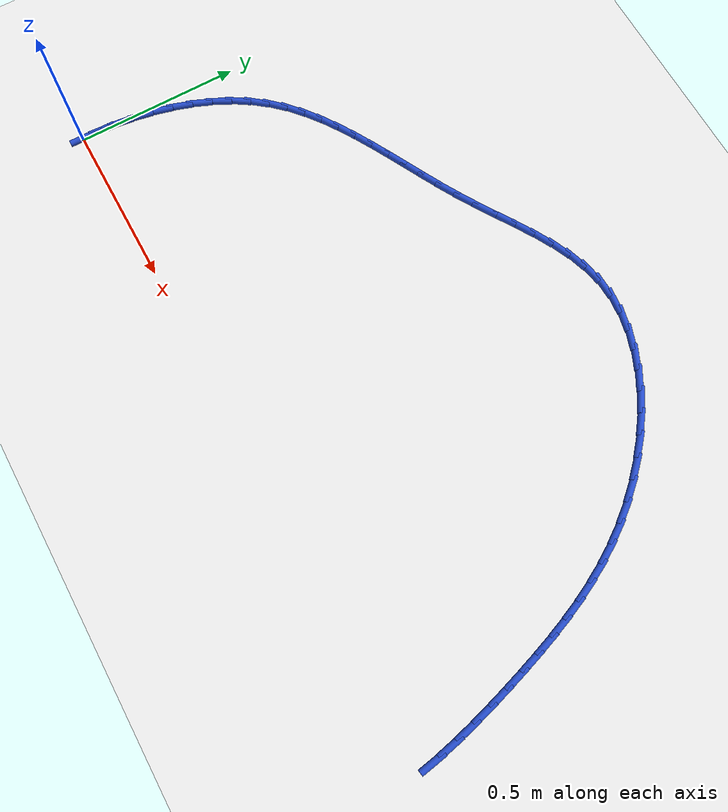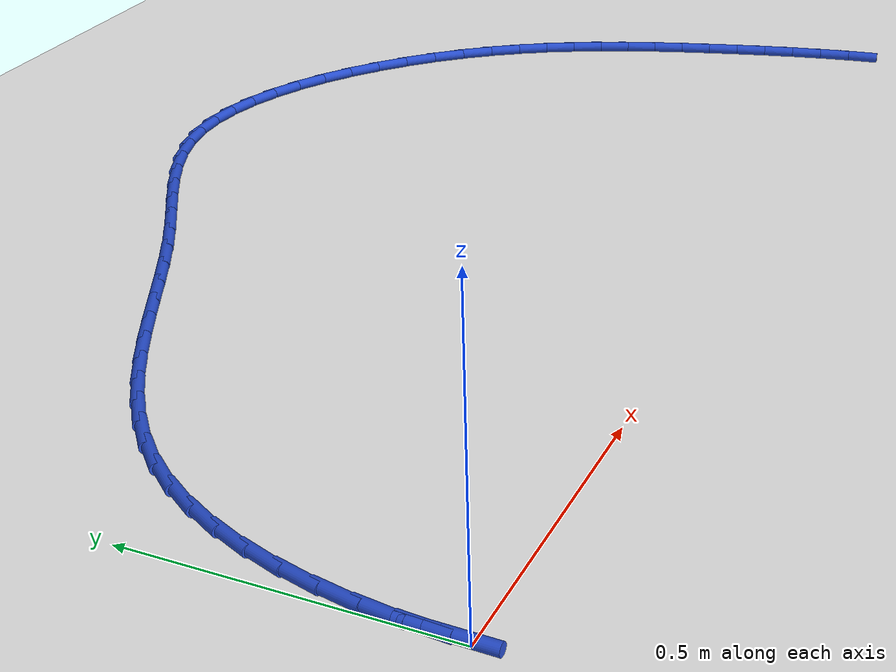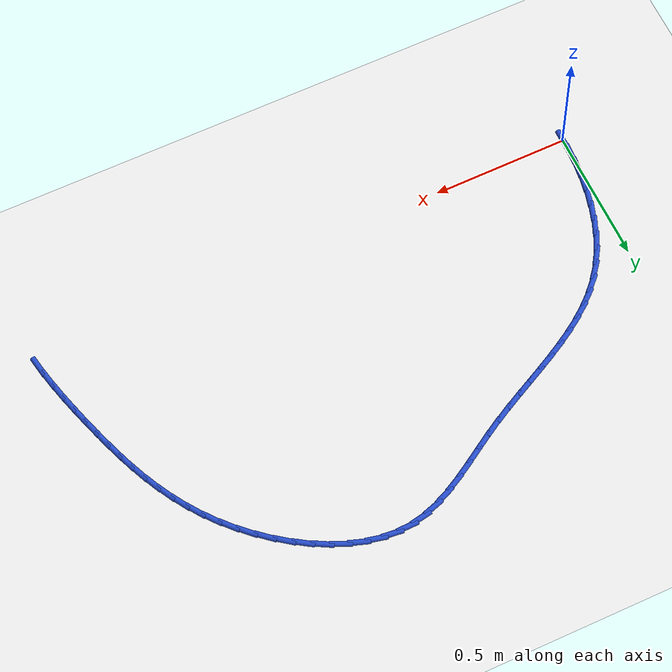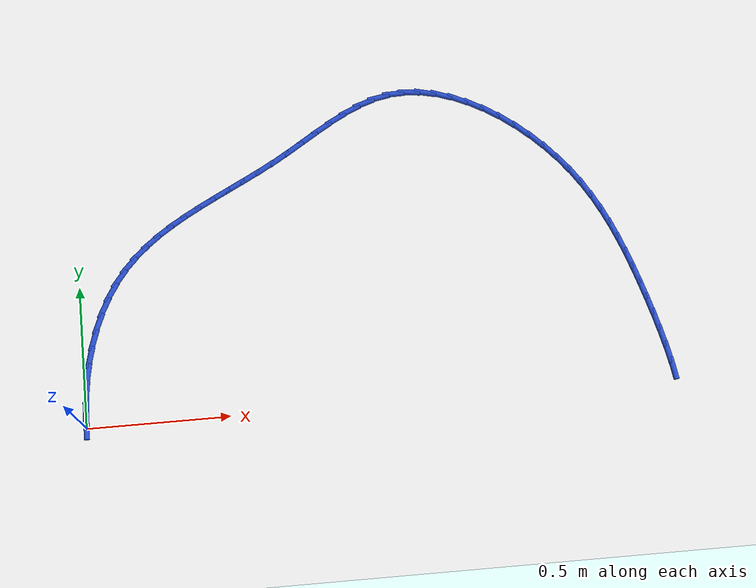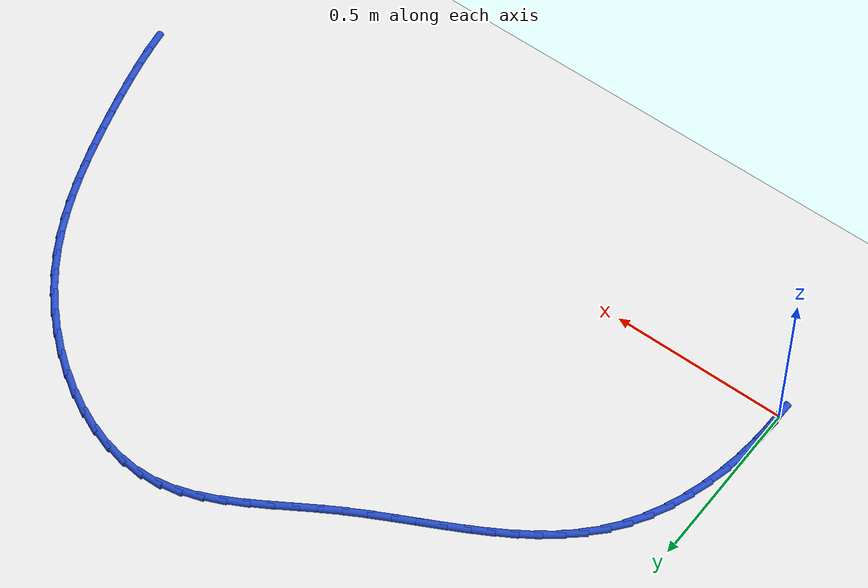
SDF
<sdf version="1.6">
 <world name="default">
  <model name="ground_plane">
   <static>1</static>
   <link name="link">
    <collision name="collision">
     <geometry><plane><normal>0 0 1</normal><size>100 100</size></plane></geometry>
     <surface><friction><ode><mu>100</mu><mu2>50</mu2></ode></friction></surface>
    </collision>
    <visual name="visual">
     <cast_shadows>0</cast_shadows>
     <geometry><plane><normal>0 0 1</normal><size>100 100</size></plane></geometry>
     <material>
      <script><uri>file://media/materials/scripts/gazebo.material</uri><name>Gazebo/WhiteGlow</name></script>
     </material>
    </visual>
   </link>
  </model>
  <model name="line">
   <link name="link_1">
    <pose>0.0010053629912772013 0.06233197883104524 0.01 0 1.57 1.4987251490626161</pose>
    <collision name="collision">
     <geometry><cylinder><radius>0.01</radius><length>0.08</length></cylinder></geometry>
    </collision>
    <visual name="visual">
     <material>
      <script><name>Gazebo/Blue</name><uri>file://media/materials/scripts/gazebo.material</uri></script>
     </material>
     <geometry><cylinder><radius>0.01</radius><length>0.08</length></cylinder></geometry>
    </visual>
   </link>
   <link name="link_2">
    <pose>0.0055066181798482956 0.12467949519743982 0.01 0 1.57 1.4407874502930955</pose>
    <collision name="collision">
     <geometry><cylinder><radius>0.01</radius><length>0.08</length></cylinder></geometry>
    </collision>
    <visual name="visual">
     <material>
      <script><name>Gazebo/Blue</name><uri>file://media/materials/scripts/gazebo.material</uri></script>
     </material>
     <geometry><cylinder><radius>0.01</radius><length>0.08</length></cylinder></geometry>
    </visual>
   </link>
   <link name="link_3">
    <pose>0.013594634945673156 0.18653986069644973 0.01 0 1.57 1.3798611943770096</pose>
    <collision name="collision">
     <geometry><cylinder><radius>0.01</radius><length>0.08</length></cylinder></geometry>
    </collision>
    <visual name="visual">
     <material>
      <script><name>Gazebo/Blue</name><uri>file://media/materials/scripts/gazebo.material</uri></script>
     </material>
     <geometry><cylinder><radius>0.01</radius><length>0.08</length></cylinder></geometry>
    </visual>
   </link>
   <link name="link_4">
    <pose>0.0253602826687117 0.2474103869253412 0.01 0 1.57 1.3149165513758694</pose>
    <collision name="collision">
     <geometry><cylinder><radius>0.01</radius><length>0.08</length></cylinder></geometry>
    </collision>
    <visual name="visual">
     <material>
      <script><name>Gazebo/Blue</name><uri>file://media/materials/scripts/gazebo.material</uri></script>
     </material>
     <geometry><cylinder><radius>0.01</radius><length>0.08</length></cylinder></geometry>
    </visual>
   </link>
   <link name="link_5">
    <pose>0.0408944307289238 0.3067883854813802 0.01 0 1.57 1.2448808017914579</pose>
    <collision name="collision">
     <geometry><cylinder><radius>0.01</radius><length>0.08</length></cylinder></geometry>
    </collision>
    <visual name="visual">
     <material>
      <script><name>Gazebo/Blue</name><uri>file://media/materials/scripts/gazebo.material</uri></script>
     </material>
     <geometry><cylinder><radius>0.01</radius><length>0.08</length></cylinder></geometry>
    </visual>
   </link>
   <link name="link_6">
    <pose>0.060287948506269305 0.3641711679618328 0.01 0 1.57 1.168652807552377</pose>
    <collision name="collision">
     <geometry><cylinder><radius>0.01</radius><length>0.08</length></cylinder></geometry>
    </collision>
    <visual name="visual">
     <material>
      <script><name>Gazebo/Blue</name><uri>file://media/materials/scripts/gazebo.material</uri></script>
     </material>
     <geometry><cylinder><radius>0.01</radius><length>0.08</length></cylinder></geometry>
    </visual>
   </link>
   <link name="link_7">
    <pose>0.08363170538070816 0.4190560459639652 0.01 0 1.57 1.0851517326380444</pose>
    <collision name="collision">
     <geometry><cylinder><radius>0.01</radius><length>0.08</length></cylinder></geometry>
    </collision>
    <visual name="visual">
     <material>
      <script><name>Gazebo/Blue</name><uri>file://media/materials/scripts/gazebo.material</uri></script>
     </material>
     <geometry><cylinder><radius>0.01</radius><length>0.08</length></cylinder></geometry>
    </visual>
   </link>
   <link name="link_8">
    <pose>0.1110165707322002 0.4709403310850433 0.01 0 1.57 0.9934164052687381</pose>
    <collision name="collision">
     <geometry><cylinder><radius>0.01</radius><length>0.08</length></cylinder></geometry>
    </collision>
    <visual name="visual">
     <material>
      <script><name>Gazebo/Blue</name><uri>file://media/materials/scripts/gazebo.material</uri></script>
     </material>
     <geometry><cylinder><radius>0.01</radius><length>0.08</length></cylinder></geometry>
    </visual>
   </link>
   <link name="link_9">
    <pose>0.14253341394070537 0.5193213349223333 0.01 0 1.57 0.8932461151203018</pose>
    <collision name="collision">
     <geometry><cylinder><radius>0.01</radius><length>0.08</length></cylinder></geometry>
    </collision>
    <visual name="visual">
     <material>
      <script><name>Gazebo/Blue</name><uri>file://media/materials/scripts/gazebo.material</uri></script>
     </material>
     <geometry><cylinder><radius>0.01</radius><length>0.08</length></cylinder></geometry>
    </visual>
   </link>
   <link name="link_10">
    <pose>0.17825940564333712 0.5637225412486763 0.01 0 1.57 0.7944623104441382</pose>
    <collision name="collision">
     <geometry><cylinder><radius>0.01</radius><length>0.08</length></cylinder></geometry>
    </collision>
    <visual name="visual">
     <material>
      <script><name>Gazebo/Blue</name><uri>file://media/materials/scripts/gazebo.material</uri></script>
     </material>
     <geometry><cylinder><radius>0.01</radius><length>0.08</length></cylinder></geometry>
    </visual>
   </link>
   <link name="link_11">
    <pose>0.21799876671861415 0.6041889188436166 0.01 0 1.57 0.7077981449531547</pose>
    <collision name="collision">
     <geometry><cylinder><radius>0.01</radius><length>0.08</length></cylinder></geometry>
    </collision>
    <visual name="visual">
     <material>
      <script><name>Gazebo/Blue</name><uri>file://media/materials/scripts/gazebo.material</uri></script>
     </material>
     <geometry><cylinder><radius>0.01</radius><length>0.08</length></cylinder></geometry>
    </visual>
   </link>
   <link name="link_12">
    <pose>0.2613043010729117 0.6412457819615546 0.01 0 1.57 0.6348866503581175</pose>
    <collision name="collision">
     <geometry><cylinder><radius>0.01</radius><length>0.08</length></cylinder></geometry>
    </collision>
    <visual name="visual">
     <material>
      <script><name>Gazebo/Blue</name><uri>file://media/materials/scripts/gazebo.material</uri></script>
     </material>
     <geometry><cylinder><radius>0.01</radius><length>0.08</length></cylinder></geometry>
    </visual>
   </link>
   <link name="link_13">
    <pose>0.30771942954541076 0.6754363717049792 0.01 0 1.57 0.575992088331563</pose>
    <collision name="collision">
     <geometry><cylinder><radius>0.01</radius><length>0.08</length></cylinder></geometry>
    </collision>
    <visual name="visual">
     <material>
      <script><name>Gazebo/Blue</name><uri>file://media/materials/scripts/gazebo.material</uri></script>
     </material>
     <geometry><cylinder><radius>0.01</radius><length>0.08</length></cylinder></geometry>
    </visual>
   </link>
   <link name="link_14">
    <pose>0.35678757297529284 0.70730392917638 0.01 0 1.57 0.5307399416518227</pose>
    <collision name="collision">
     <geometry><cylinder><radius>0.01</radius><length>0.08</length></cylinder></geometry>
    </collision>
    <visual name="visual">
     <material>
      <script><name>Gazebo/Blue</name><uri>file://media/materials/scripts/gazebo.material</uri></script>
     </material>
     <geometry><cylinder><radius>0.01</radius><length>0.08</length></cylinder></geometry>
    </visual>
   </link>
   <link name="link_15">
    <pose>0.4080521522017393 0.7373916954782463 0.01 0 1.57 0.49846960592699047</pose>
    <collision name="collision">
     <geometry><cylinder><radius>0.01</radius><length>0.08</length></cylinder></geometry>
    </collision>
    <visual name="visual">
     <material>
      <script><name>Gazebo/Blue</name><uri>file://media/materials/scripts/gazebo.material</uri></script>
     </material>
     <geometry><cylinder><radius>0.01</radius><length>0.08</length></cylinder></geometry>
    </visual>
   </link>
   <link name="link_16">
    <pose>0.4610565880639315 0.766242911713068 0.01 0 1.57 0.4784790508625739</pose>
    <collision name="collision">
     <geometry><cylinder><radius>0.01</radius><length>0.08</length></cylinder></geometry>
    </collision>
    <visual name="visual">
     <material>
      <script><name>Gazebo/Blue</name><uri>file://media/materials/scripts/gazebo.material</uri></script>
     </material>
     <geometry><cylinder><radius>0.01</radius><length>0.08</length></cylinder></geometry>
    </visual>
   </link>
   <link name="link_17">
    <pose>0.5153443014010507 0.7944008189833338 0.01 0 1.57 0.47016725710114016</pose>
    <collision name="collision">
     <geometry><cylinder><radius>0.01</radius><length>0.08</length></cylinder></geometry>
    </collision>
    <visual name="visual">
     <material>
      <script><name>Gazebo/Blue</name><uri>file://media/materials/scripts/gazebo.material</uri></script>
     </material>
     <geometry><cylinder><radius>0.01</radius><length>0.08</length></cylinder></geometry>
    </visual>
   </link>
   <link name="link_18">
    <pose>0.5704587130522781 0.8224086583915333 0.01 0 1.57 0.47310053680248226</pose>
    <collision name="collision">
     <geometry><cylinder><radius>0.01</radius><length>0.08</length></cylinder></geometry>
    </collision>
    <visual name="visual">
     <material>
      <script><name>Gazebo/Blue</name><uri>file://media/materials/scripts/gazebo.material</uri></script>
     </material>
     <geometry><cylinder><radius>0.01</radius><length>0.08</length></cylinder></geometry>
    </visual>
   </link>
   <link name="link_19">
    <pose>0.6259432438567952 0.8508096710401559 0.01 0 1.57 0.48702663367463433</pose>
    <collision name="collision">
     <geometry><cylinder><radius>0.01</radius><length>0.08</length></cylinder></geometry>
    </collision>
    <visual name="visual">
     <material>
      <script><name>Gazebo/Blue</name><uri>file://media/materials/scripts/gazebo.material</uri></script>
     </material>
     <geometry><cylinder><radius>0.01</radius><length>0.08</length></cylinder></geometry>
    </visual>
   </link>
   <link name="link_20">
    <pose>0.6813413146537833 0.8801470980316911 0.01 0 1.57 0.5118509779170454</pose>
    <collision name="collision">
     <geometry><cylinder><radius>0.01</radius><length>0.08</length></cylinder></geometry>
    </collision>
    <visual name="visual">
     <material>
      <script><name>Gazebo/Blue</name><uri>file://media/materials/scripts/gazebo.material</uri></script>
     </material>
     <geometry><cylinder><radius>0.01</radius><length>0.08</length></cylinder></geometry>
    </visual>
   </link>
   <link name="link_21">
    <pose>0.7361963462824235 0.910964180468628 0.01 0 1.57 0.5432582518347425</pose>
    <collision name="collision">
     <geometry><cylinder><radius>0.01</radius><length>0.08</length></cylinder></geometry>
    </collision>
    <visual name="visual">
     <material>
      <script><name>Gazebo/Blue</name><uri>file://media/materials/scripts/gazebo.material</uri></script>
     </material>
     <geometry><cylinder><radius>0.01</radius><length>0.08</length></cylinder></geometry>
    </visual>
   </link>
   <link name="link_22">
    <pose>0.7901544878487234 0.9435477377021455 0.01 0 1.57 0.5601740028474743</pose>
    <collision name="collision">
     <geometry><cylinder><radius>0.01</radius><length>0.08</length></cylinder></geometry>
    </collision>
    <visual name="visual">
     <material>
      <script><name>Gazebo/Blue</name><uri>file://media/materials/scripts/gazebo.material</uri></script>
     </material>
     <geometry><cylinder><radius>0.01</radius><length>0.08</length></cylinder></geometry>
    </visual>
   </link>
   <link name="link_23">
    <pose>0.843367504032605 0.9769225135616681 0.01 0 1.57 0.5561259656295415</pose>
    <collision name="collision">
     <geometry><cylinder><radius>0.01</radius><length>0.08</length></cylinder></geometry>
    </collision>
    <visual name="visual">
     <material>
      <script><name>Gazebo/Blue</name><uri>file://media/materials/scripts/gazebo.material</uri></script>
     </material>
     <geometry><cylinder><radius>0.01</radius><length>0.08</length></cylinder></geometry>
    </visual>
   </link>
   <link name="link_24">
    <pose>0.8961424543708818 1.0097256177774194 0.01 0 1.57 0.5303312771014151</pose>
    <collision name="collision">
     <geometry><cylinder><radius>0.01</radius><length>0.08</length></cylinder></geometry>
    </collision>
    <visual name="visual">
     <material>
      <script><name>Gazebo/Blue</name><uri>file://media/materials/scripts/gazebo.material</uri></script>
     </material>
     <geometry><cylinder><radius>0.01</radius><length>0.08</length></cylinder></geometry>
    </visual>
   </link>
   <link name="link_25">
    <pose>0.9487864401084989 1.0405940559712539 0.01 0 1.57 0.48107258033093203</pose>
    <collision name="collision">
     <geometry><cylinder><radius>0.01</radius><length>0.08</length></cylinder></geometry>
    </collision>
    <visual name="visual">
     <material>
      <script><name>Gazebo/Blue</name><uri>file://media/materials/scripts/gazebo.material</uri></script>
     </material>
     <geometry><cylinder><radius>0.01</radius><length>0.08</length></cylinder></geometry>
    </visual>
   </link>
   <link name="link_26">
    <pose>1.0016065624904016 1.0681648337650271 0.01 0 1.57 0.40593461998639885</pose>
    <collision name="collision">
     <geometry><cylinder><radius>0.01</radius><length>0.08</length></cylinder></geometry>
    </collision>
    <visual name="visual">
     <material>
      <script><name>Gazebo/Blue</name><uri>file://media/materials/scripts/gazebo.material</uri></script>
     </material>
     <geometry><cylinder><radius>0.01</radius><length>0.08</length></cylinder></geometry>
    </visual>
   </link>
   <link name="link_27">
    <pose>1.0549099227615355 1.0910749567805942 0.01 0 1.57 0.30258493595603275</pose>
    <collision name="collision">
     <geometry><cylinder><radius>0.01</radius><length>0.08</length></cylinder></geometry>
    </collision>
    <visual name="visual">
     <material>
      <script><name>Gazebo/Blue</name><uri>file://media/materials/scripts/gazebo.material</uri></script>
     </material>
     <geometry><cylinder><radius>0.01</radius><length>0.08</length></cylinder></geometry>
    </visual>
   </link>
   <link name="link_28">
    <pose>1.1090036221668451 1.10796143063981 0.01 0 1.57 0.17048263518442544</pose>
    <collision name="collision">
     <geometry><cylinder><radius>0.01</radius><length>0.08</length></cylinder></geometry>
    </collision>
    <visual name="visual">
     <material>
      <script><name>Gazebo/Blue</name><uri>file://media/materials/scripts/gazebo.material</uri></script>
     </material>
     <geometry><cylinder><radius>0.01</radius><length>0.08</length></cylinder></geometry>
    </visual>
   </link>
   <link name="link_29">
    <pose>1.164194182612053 1.1174626909248928 0.01 0 1.57 0.022567894930224493</pose>
    <collision name="collision">
     <geometry><cylinder><radius>0.01</radius><length>0.08</length></cylinder></geometry>
    </collision>
    <visual name="visual">
     <material>
      <script><name>Gazebo/Blue</name><uri>file://media/materials/scripts/gazebo.material</uri></script>
     </material>
     <geometry><cylinder><radius>0.01</radius><length>0.08</length></cylinder></geometry>
    </visual>
   </link>
   <link name="link_30">
    <pose>1.220578179842152 1.11873537512101 0.01 0 1.57 -0.11347858202582886</pose>
    <collision name="collision">
     <geometry><cylinder><radius>0.01</radius><length>0.08</length></cylinder></geometry>
    </collision>
    <visual name="visual">
     <material>
      <script><name>Gazebo/Blue</name><uri>file://media/materials/scripts/gazebo.material</uri></script>
     </material>
     <geometry><cylinder><radius>0.01</radius><length>0.08</length></cylinder></geometry>
    </visual>
   </link>
   <link name="link_31">
    <pose>1.277731332135758 1.1122217328402983 0.01 0 1.57 -0.2335891682261421</pose>
    <collision name="collision">
     <geometry><cylinder><radius>0.01</radius><length>0.08</length></cylinder></geometry>
    </collision>
    <visual name="visual">
     <material>
      <script><name>Gazebo/Blue</name><uri>file://media/materials/scripts/gazebo.material</uri></script>
     </material>
     <geometry><cylinder><radius>0.01</radius><length>0.08</length></cylinder></geometry>
    </visual>
   </link>
   <link name="link_32">
    <pose>1.335149965818095 1.098559973750481 0.01 0 1.57 -0.33914228710817984</pose>
    <collision name="collision">
     <geometry><cylinder><radius>0.01</radius><length>0.08</length></cylinder></geometry>
    </collision>
    <visual name="visual">
     <material>
      <script><name>Gazebo/Blue</name><uri>file://media/materials/scripts/gazebo.material</uri></script>
     </material>
     <geometry><cylinder><radius>0.01</radius><length>0.08</length></cylinder></geometry>
    </visual>
   </link>
   <link name="link_33">
    <pose>1.3923304072143876 1.0783883075192808 0.01 0 1.57 -0.43233167740547573</pose>
    <collision name="collision">
     <geometry><cylinder><radius>0.01</radius><length>0.08</length></cylinder></geometry>
    </collision>
    <visual name="visual">
     <material>
      <script><name>Gazebo/Blue</name><uri>file://media/materials/scripts/gazebo.material</uri></script>
     </material>
     <geometry><cylinder><radius>0.01</radius><length>0.08</length></cylinder></geometry>
    </visual>
   </link>
   <link name="link_34">
    <pose>1.4487689826498598 1.0523449438144208 0.01 0 1.57 -0.5155599499745576</pose>
    <collision name="collision">
     <geometry><cylinder><radius>0.01</radius><length>0.08</length></cylinder></geometry>
    </collision>
    <visual name="visual">
     <material>
      <script><name>Gazebo/Blue</name><uri>file://media/materials/scripts/gazebo.material</uri></script>
     </material>
     <geometry><cylinder><radius>0.01</radius><length>0.08</length></cylinder></geometry>
    </visual>
   </link>
   <link name="link_35">
    <pose>1.503962018449736 1.0210680923036237 0.01 0 1.57 -0.591142706060563</pose>
    <collision name="collision">
     <geometry><cylinder><radius>0.01</radius><length>0.08</length></cylinder></geometry>
    </collision>
    <visual name="visual">
     <material>
      <script><name>Gazebo/Blue</name><uri>file://media/materials/scripts/gazebo.material</uri></script>
     </material>
     <geometry><cylinder><radius>0.01</radius><length>0.08</length></cylinder></geometry>
    </visual>
   </link>
   <link name="link_36">
    <pose>1.5574058409392404 0.9851959626546127 0.01 0 1.57 -0.661213866147255</pose>
    <collision name="collision">
     <geometry><cylinder><radius>0.01</radius><length>0.08</length></cylinder></geometry>
    </collision>
    <visual name="visual">
     <material>
      <script><name>Gazebo/Blue</name><uri>file://media/materials/scripts/gazebo.material</uri></script>
     </material>
     <geometry><cylinder><radius>0.01</radius><length>0.08</length></cylinder></geometry>
    </visual>
   </link>
   <link name="link_37">
    <pose>1.6085967764435969 0.9453667645351105 0.01 0 1.57 -0.7277401770346114</pose>
    <collision name="collision">
     <geometry><cylinder><radius>0.01</radius><length>0.08</length></cylinder></geometry>
    </collision>
    <visual name="visual">
     <material>
      <script><name>Gazebo/Blue</name><uri>file://media/materials/scripts/gazebo.material</uri></script>
     </material>
     <geometry><cylinder><radius>0.01</radius><length>0.08</length></cylinder></geometry>
    </visual>
   </link>
   <link name="link_38">
    <pose>1.6570311512880298 0.90221870761284 0.01 0 1.57 -0.7925908423556696</pose>
    <collision name="collision">
     <geometry><cylinder><radius>0.01</radius><length>0.08</length></cylinder></geometry>
    </collision>
    <visual name="visual">
     <material>
      <script><name>Gazebo/Blue</name><uri>file://media/materials/scripts/gazebo.material</uri></script>
     </material>
     <geometry><cylinder><radius>0.01</radius><length>0.08</length></cylinder></geometry>
    </visual>
   </link>
   <link name="link_39">
    <pose>1.7022052917977635 0.856390001555524 0.01 0 1.57 -0.8576379086209209</pose>
    <collision name="collision">
     <geometry><cylinder><radius>0.01</radius><length>0.08</length></cylinder></geometry>
    </collision>
    <visual name="visual">
     <material>
      <script><name>Gazebo/Blue</name><uri>file://media/materials/scripts/gazebo.material</uri></script>
     </material>
     <geometry><cylinder><radius>0.01</radius><length>0.08</length></cylinder></geometry>
    </visual>
   </link>
   <link name="link_40">
    <pose>1.7436155362003056 0.8085188489436133 0.01 0 1.57 -0.9236756579577907</pose>
    <collision name="collision">
     <geometry><cylinder><radius>0.01</radius><length>0.08</length></cylinder></geometry>
    </collision>
    <visual name="visual">
     <material>
      <script><name>Gazebo/Blue</name><uri>file://media/materials/scripts/gazebo.material</uri></script>
     </material>
     <geometry><cylinder><radius>0.01</radius><length>0.08</length></cylinder></geometry>
    </visual>
   </link>
   <link name="link_41">
    <pose>1.7809278506845327 0.7591424465619665 0.01 0 1.57 -0.9872159108964448</pose>
    <collision name="collision">
     <geometry><cylinder><radius>0.01</radius><length>0.08</length></cylinder></geometry>
    </collision>
    <visual name="visual">
     <material>
      <script><name>Gazebo/Blue</name><uri>file://media/materials/scripts/gazebo.material</uri></script>
     </material>
     <geometry><cylinder><radius>0.01</radius><length>0.08</length></cylinder></geometry>
    </visual>
   </link>
   <link name="link_42">
    <pose>1.8144047222300206 0.7084427899858935 0.01 0 1.57 -1.0463377314782518</pose>
    <collision name="collision">
     <geometry><cylinder><radius>0.01</radius><length>0.08</length></cylinder></geometry>
    </collision>
    <visual name="visual">
     <material>
      <script><name>Gazebo/Blue</name><uri>file://media/materials/scripts/gazebo.material</uri></script>
     </material>
     <geometry><cylinder><radius>0.01</radius><length>0.08</length></cylinder></geometry>
    </visual>
   </link>
   <link name="link_43">
    <pose>1.8444396950490773 0.6565238361232995 0.01 0 1.57 -1.1000920470639988</pose>
    <collision name="collision">
     <geometry><cylinder><radius>0.01</radius><length>0.08</length></cylinder></geometry>
    </collision>
    <visual name="visual">
     <material>
      <script><name>Gazebo/Blue</name><uri>file://media/materials/scripts/gazebo.material</uri></script>
     </material>
     <geometry><cylinder><radius>0.01</radius><length>0.08</length></cylinder></geometry>
    </visual>
   </link>
   <link name="link_44">
    <pose>1.8714263133540097 0.6034895418820889 0.01 0 1.57 -1.1477692637415355</pose>
    <collision name="collision">
     <geometry><cylinder><radius>0.01</radius><length>0.08</length></cylinder></geometry>
    </collision>
    <visual name="visual">
     <material>
      <script><name>Gazebo/Blue</name><uri>file://media/materials/scripts/gazebo.material</uri></script>
     </material>
     <geometry><cylinder><radius>0.01</radius><length>0.08</length></cylinder></geometry>
    </visual>
   </link>
   <link name="link_45">
    <pose>1.895758121357126 0.5494438641701664 0.01 0 1.57 -1.188889850971701</pose>
    <collision name="collision">
     <geometry><cylinder><radius>0.01</radius><length>0.08</length></cylinder></geometry>
    </collision>
    <visual name="visual">
     <material>
      <script><name>Gazebo/Blue</name><uri>file://media/materials/scripts/gazebo.material</uri></script>
     </material>
     <geometry><cylinder><radius>0.01</radius><length>0.08</length></cylinder></geometry>
    </visual>
   </link>
   <link name="link_46">
    <pose>1.9178286632707324 0.49449075989543645 0.01 0 1.57 -1.2231710320164826</pose>
    <collision name="collision">
     <geometry><cylinder><radius>0.01</radius><length>0.08</length></cylinder></geometry>
    </collision>
    <visual name="visual">
     <material>
      <script><name>Gazebo/Blue</name><uri>file://media/materials/scripts/gazebo.material</uri></script>
     </material>
     <geometry><cylinder><radius>0.01</radius><length>0.08</length></cylinder></geometry>
    </visual>
   </link>
   <link name="link_47">
    <pose>1.9380314833071366 0.4387341859658033 0.01 0 1.57 -1.250482050044938</pose>
    <collision name="collision">
     <geometry><cylinder><radius>0.01</radius><length>0.08</length></cylinder></geometry>
    </collision>
    <visual name="visual">
     <material>
      <script><name>Gazebo/Blue</name><uri>file://media/materials/scripts/gazebo.material</uri></script>
     </material>
     <geometry><cylinder><radius>0.01</radius><length>0.08</length></cylinder></geometry>
    </visual>
   </link>
   <link name="link_48">
    <pose>1.956760125678647 0.38227809928917206 0.01 0 1.57 -1.2707984418044056</pose>
    <collision name="collision">
     <geometry><cylinder><radius>0.01</radius><length>0.08</length></cylinder></geometry>
    </collision>
    <visual name="visual">
     <material>
      <script><name>Gazebo/Blue</name><uri>file://media/materials/scripts/gazebo.material</uri></script>
     </material>
     <geometry><cylinder><radius>0.01</radius><length>0.08</length></cylinder></geometry>
    </visual>
   </link>
   <link name="link_49">
    <pose>1.97440813459757 0.32522645677344686 0.01 0 1.57 -1.2854082681436392</pose>
    <collision name="collision">
     <geometry><cylinder><radius>0.01</radius><length>0.08</length></cylinder></geometry>
    </collision>
    <visual name="visual">
     <material>
      <script><name>Gazebo/Blue</name><uri>file://media/materials/scripts/gazebo.material</uri></script>
     </material>
     <geometry><cylinder><radius>0.01</radius><length>0.08</length></cylinder></geometry>
    </visual>
   </link>
   <link name="link_50">
    <pose>1.9912928978678044 0.26767725821104593 0.01 0 1.57 -1.3018709962682031</pose>
    <collision name="collision">
     <geometry><cylinder><radius>0.01</radius><length>0.08</length></cylinder></geometry>
    </collision>
    <visual name="visual">
     <material>
      <script><name>Gazebo/Blue</name><uri>file://media/materials/scripts/gazebo.material</uri></script>
     </material>
     <geometry><cylinder><radius>0.01</radius><length>0.08</length></cylinder></geometry>
    </visual>
   </link>
   <link name="link_51">
    <pose>2.007273540649581 0.20969265712027232 0.01 0 1.57 -1.323042145392249</pose>
    <collision name="collision">
     <geometry><cylinder><radius>0.01</radius><length>0.08</length></cylinder></geometry>
    </collision>
    <visual name="visual">
     <material>
      <script><name>Gazebo/Blue</name><uri>file://media/materials/scripts/gazebo.material</uri></script>
     </material>
     <geometry><cylinder><radius>0.01</radius><length>0.08</length></cylinder></geometry>
    </visual>
   </link>
   <link name="link_52">
    <pose>2.022038595138865 0.1513214628766243 0.01 0 1.57 -1.3490249697632117</pose>
    <collision name="collision">
     <geometry><cylinder><radius>0.01</radius><length>0.08</length></cylinder></geometry>
    </collision>
    <visual name="visual">
     <material>
      <script><name>Gazebo/Blue</name><uri>file://media/materials/scripts/gazebo.material</uri></script>
     </material>
     <geometry><cylinder><radius>0.01</radius><length>0.08</length></cylinder></geometry>
    </visual>
   </link>
   <link name="link_53">
    <pose>2.0352763061710255 0.09261246237764599 0.01 0 1.57 -1.3799445105958448</pose>
    <collision name="collision">
     <geometry><cylinder><radius>0.01</radius><length>0.08</length></cylinder></geometry>
    </collision>
    <visual name="visual">
     <material>
      <script><name>Gazebo/Blue</name><uri>file://media/materials/scripts/gazebo.material</uri></script>
     </material>
     <geometry><cylinder><radius>0.01</radius><length>0.08</length></cylinder></geometry>
    </visual>
   </link>
   <link name="link_54">
    <pose>2.0466749185814312 0.0336144425208815 0.01 0 1.57 -1.4159350144212062</pose>
    <collision name="collision">
     <geometry><cylinder><radius>0.01</radius><length>0.08</length></cylinder></geometry>
    </collision>
    <visual name="visual">
     <material>
      <script><name>Gazebo/Blue</name><uri>file://media/materials/scripts/gazebo.material</uri></script>
     </material>
     <geometry><cylinder><radius>0.01</radius><length>0.08</length></cylinder></geometry>
    </visual>
   </link>
   <link name="link_110">
    <pose>-3.469446951953614e-18 1.249000902703301e-16 0.01 0 1.57 1.5549134580173292</pose>
    <collision name="collision">
     <geometry><cylinder><radius>0.01</radius><length>0.08</length></cylinder></geometry>
    </collision>
    <visual name="visual">
     <material>
      <script><name>Gazebo/Blue</name><uri>file://media/materials/scripts/gazebo.material</uri></script>
     </material>
     <geometry><cylinder><radius>0.01</radius><length>0.08</length></cylinder></geometry>
    </visual>
   </link>
   <link name="link_111">
    <pose>0.0009909632641078997 0.06238671035831597 0.01 0 1.57 1.5549134580173294</pose>
    <collision name="collision">
     <geometry><cylinder><radius>0.01</radius><length>0.08</length></cylinder></geometry>
    </collision>
    <visual name="visual">
     <material>
      <script><name>Gazebo/Blue</name><uri>file://media/materials/scripts/gazebo.material</uri></script>
     </material>
     <geometry><cylinder><radius>0.01</radius><length>0.08</length></cylinder></geometry>
    </visual>
   </link>
  </model>
 </world>
</sdf>
